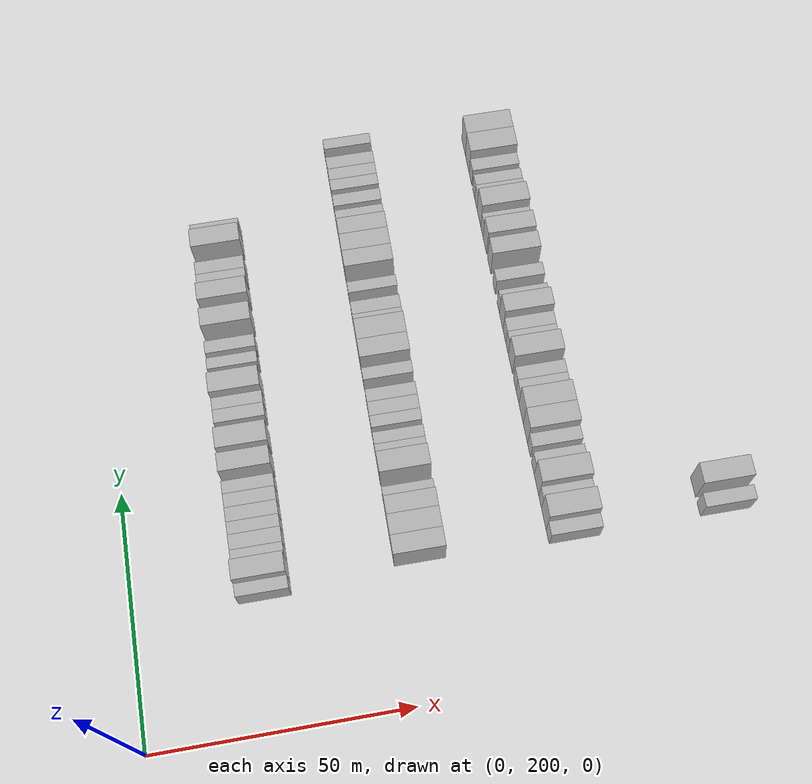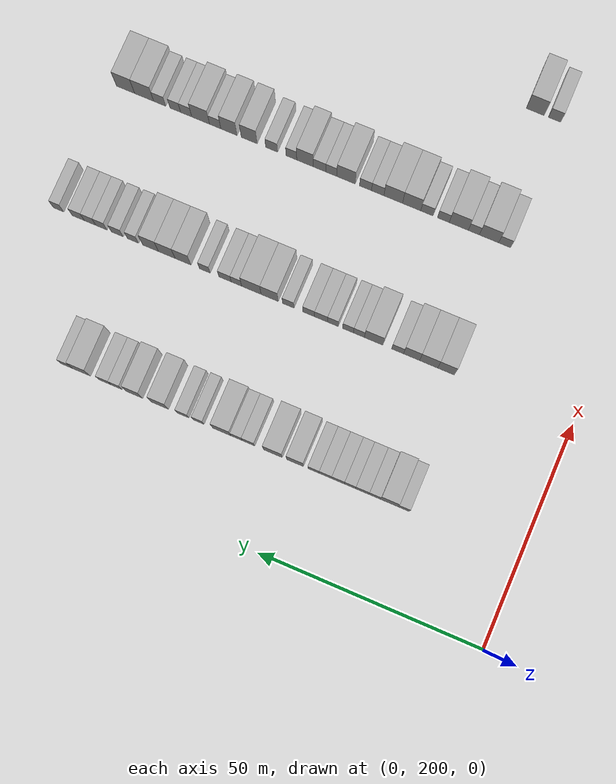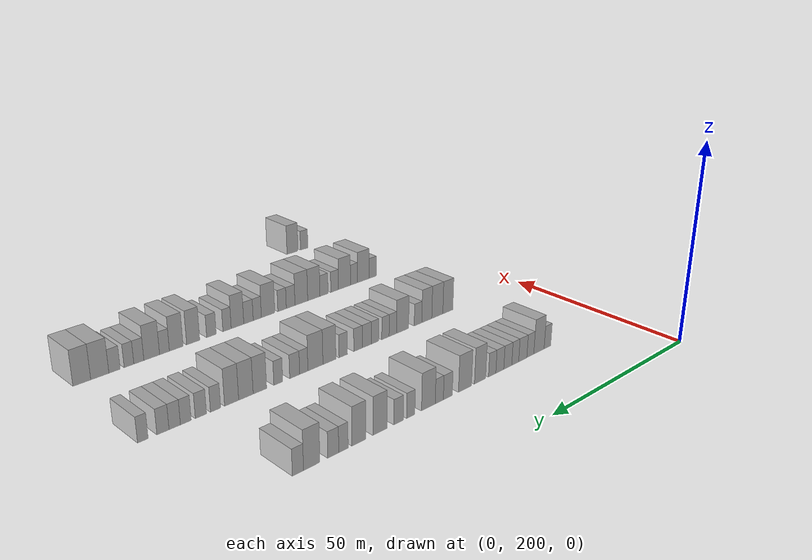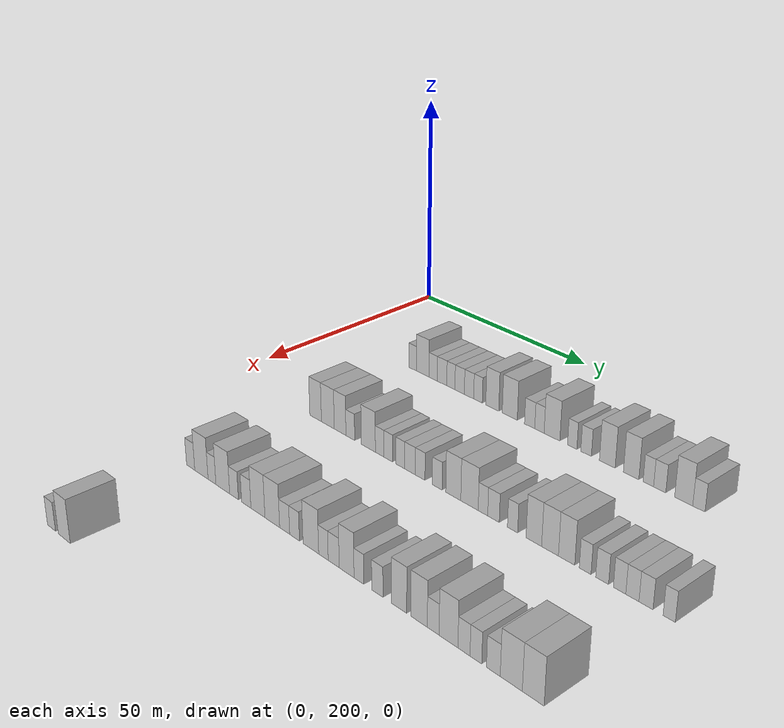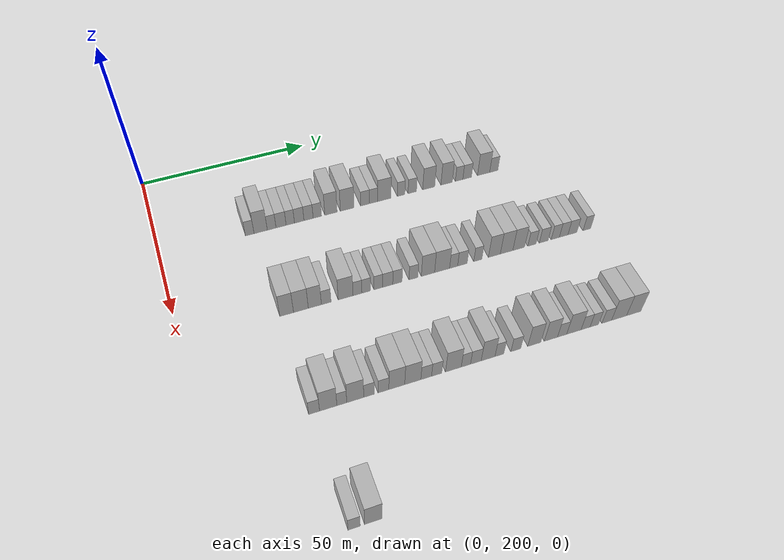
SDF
<sdf version="1.6">
 <world name="default">
  <model name="building_173">
   <static>1</static>
   <pose>25.0000 225.8826 0 0.000000 0.000000 0.000000</pose>
   <link name="link">
    <pose>0 0 3.00 0 0 0</pose>
    <collision name="collision"><geometry><box><size>10.0000 2.5485 6.0000</size></box></geometry></collision>
    <visual name="visual">
     <cast_shadows>0</cast_shadows>
     <geometry><box><size>10.0000 2.5485 6.0000</size></box></geometry>
     <material>
      <script>
       <uri>model://HANNAS_wall/materials/scripts</uri>
       <uri>model://HANNAS_wall/materials/textures</uri>
       <name>vrc/HANNAS_wall</name>
      </script>
     </material>
    </visual>
   </link>
  </model>
  <model name="building_174">
   <static>1</static>
   <pose>25.0000 229.1129 0 0.000000 0.000000 0.000000</pose>
   <link name="link">
    <pose>0 0 4.50 0 0 0</pose>
    <collision name="collision"><geometry><box><size>10.0000 3.9122 9.0000</size></box></geometry></collision>
    <visual name="visual">
     <cast_shadows>0</cast_shadows>
     <geometry><box><size>10.0000 3.9122 9.0000</size></box></geometry>
     <material>
      <script>
       <uri>model://HANNAS_wall/materials/scripts</uri>
       <uri>model://HANNAS_wall/materials/textures</uri>
       <name>vrc/HANNAS_wall</name>
      </script>
     </material>
    </visual>
   </link>
  </model>
  <model name="building_175">
   <static>1</static>
   <pose>25.0000 232.3630 0 0.000000 0.000000 0.000000</pose>
   <link name="link">
    <pose>0 0 3.00 0 0 0</pose>
    <collision name="collision"><geometry><box><size>10.0000 2.5878 6.0000</size></box></geometry></collision>
    <visual name="visual">
     <cast_shadows>0</cast_shadows>
     <geometry><box><size>10.0000 2.5878 6.0000</size></box></geometry>
     <material>
      <script>
       <uri>model://HANNAS_wall/materials/scripts</uri>
       <uri>model://HANNAS_wall/materials/textures</uri>
       <name>vrc/HANNAS_wall</name>
      </script>
     </material>
    </visual>
   </link>
  </model>
  <model name="building_176">
   <static>1</static>
   <pose>25.0000 235.1568 0 0.000000 0.000000 0.000000</pose>
   <link name="link">
    <pose>0 0 3.00 0 0 0</pose>
    <collision name="collision"><geometry><box><size>10.0000 2.9998 6.0000</size></box></geometry></collision>
    <visual name="visual">
     <cast_shadows>0</cast_shadows>
     <geometry><box><size>10.0000 2.9998 6.0000</size></box></geometry>
     <material>
      <script>
       <uri>model://HANNAS_wall/materials/scripts</uri>
       <uri>model://HANNAS_wall/materials/textures</uri>
       <name>vrc/HANNAS_wall</name>
      </script>
     </material>
    </visual>
   </link>
  </model>
  <model name="building_177">
   <static>1</static>
   <pose>25.0000 237.9057 0 0.000000 0.000000 0.000000</pose>
   <link name="link">
    <pose>0 0 3.00 0 0 0</pose>
    <collision name="collision"><geometry><box><size>10.0000 2.4981 6.0000</size></box></geometry></collision>
    <visual name="visual">
     <cast_shadows>0</cast_shadows>
     <geometry><box><size>10.0000 2.4981 6.0000</size></box></geometry>
     <material>
      <script>
       <uri>model://HANNAS_wall/materials/scripts</uri>
       <uri>model://HANNAS_wall/materials/textures</uri>
       <name>vrc/HANNAS_wall</name>
      </script>
     </material>
    </visual>
   </link>
  </model>
  <model name="building_178">
   <static>1</static>
   <pose>25.0000 240.5808 0 0.000000 0.000000 0.000000</pose>
   <link name="link">
    <pose>0 0 3.00 0 0 0</pose>
    <collision name="collision"><geometry><box><size>10.0000 2.8521 6.0000</size></box></geometry></collision>
    <visual name="visual">
     <cast_shadows>0</cast_shadows>
     <geometry><box><size>10.0000 2.8521 6.0000</size></box></geometry>
     <material>
      <script>
       <uri>model://HANNAS_wall/materials/scripts</uri>
       <uri>model://HANNAS_wall/materials/textures</uri>
       <name>vrc/HANNAS_wall</name>
      </script>
     </material>
    </visual>
   </link>
  </model>
  <model name="building_179">
   <static>1</static>
   <pose>25.0000 243.3950 0 0.000000 0.000000 0.000000</pose>
   <link name="link">
    <pose>0 0 3.00 0 0 0</pose>
    <collision name="collision"><geometry><box><size>10.0000 2.7762 6.0000</size></box></geometry></collision>
    <visual name="visual">
     <cast_shadows>0</cast_shadows>
     <geometry><box><size>10.0000 2.7762 6.0000</size></box></geometry>
     <material>
      <script>
       <uri>model://HANNAS_wall/materials/scripts</uri>
       <uri>model://HANNAS_wall/materials/textures</uri>
       <name>vrc/HANNAS_wall</name>
      </script>
     </material>
    </visual>
   </link>
  </model>
  <model name="building_180">
   <static>1</static>
   <pose>25.0000 246.0584 0 0.000000 0.000000 0.000000</pose>
   <link name="link">
    <pose>0 0 3.00 0 0 0</pose>
    <collision name="collision"><geometry><box><size>10.0000 2.5507 6.0000</size></box></geometry></collision>
    <visual name="visual">
     <cast_shadows>0</cast_shadows>
     <geometry><box><size>10.0000 2.5507 6.0000</size></box></geometry>
     <material>
      <script>
       <uri>model://HANNAS_wall/materials/scripts</uri>
       <uri>model://HANNAS_wall/materials/textures</uri>
       <name>vrc/HANNAS_wall</name>
      </script>
     </material>
    </visual>
   </link>
  </model>
  <model name="building_181">
   <static>1</static>
   <pose>25.0000 250.2073 0 0.000000 0.000000 0.000000</pose>
   <link name="link">
    <pose>0 0 4.50 0 0 0</pose>
    <collision name="collision"><geometry><box><size>10.0000 3.7470 9.0000</size></box></geometry></collision>
    <visual name="visual">
     <cast_shadows>0</cast_shadows>
     <geometry><box><size>10.0000 3.7470 9.0000</size></box></geometry>
     <material>
      <script>
       <uri>model://HANNAS_wall/materials/scripts</uri>
       <uri>model://HANNAS_wall/materials/textures</uri>
       <name>vrc/HANNAS_wall</name>
      </script>
     </material>
    </visual>
   </link>
  </model>
  <model name="building_182">
   <static>1</static>
   <pose>25.0000 255.2001 0 0.000000 0.000000 0.000000</pose>
   <link name="link">
    <pose>0 0 4.50 0 0 0</pose>
    <collision name="collision"><geometry><box><size>10.0000 4.2385 9.0000</size></box></geometry></collision>
    <visual name="visual">
     <cast_shadows>0</cast_shadows>
     <geometry><box><size>10.0000 4.2385 9.0000</size></box></geometry>
     <material>
      <script>
       <uri>model://HANNAS_wall/materials/scripts</uri>
       <uri>model://HANNAS_wall/materials/textures</uri>
       <name>vrc/HANNAS_wall</name>
      </script>
     </material>
    </visual>
   </link>
  </model>
  <model name="building_183">
   <static>1</static>
   <pose>25.0000 260.7213 0 0.000000 0.000000 0.000000</pose>
   <link name="link">
    <pose>0 0 3.00 0 0 0</pose>
    <collision name="collision"><geometry><box><size>10.0000 2.8040 6.0000</size></box></geometry></collision>
    <visual name="visual">
     <cast_shadows>0</cast_shadows>
     <geometry><box><size>10.0000 2.8040 6.0000</size></box></geometry>
     <material>
      <script>
       <uri>model://HANNAS_wall/materials/scripts</uri>
       <uri>model://HANNAS_wall/materials/textures</uri>
       <name>vrc/HANNAS_wall</name>
      </script>
     </material>
    </visual>
   </link>
  </model>
  <model name="building_184">
   <static>1</static>
   <pose>25.0000 263.3914 0 0.000000 0.000000 0.000000</pose>
   <link name="link">
    <pose>0 0 3.00 0 0 0</pose>
    <collision name="collision"><geometry><box><size>10.0000 2.5361 6.0000</size></box></geometry></collision>
    <visual name="visual">
     <cast_shadows>0</cast_shadows>
     <geometry><box><size>10.0000 2.5361 6.0000</size></box></geometry>
     <material>
      <script>
       <uri>model://HANNAS_wall/materials/scripts</uri>
       <uri>model://HANNAS_wall/materials/textures</uri>
       <name>vrc/HANNAS_wall</name>
      </script>
     </material>
    </visual>
   </link>
  </model>
  <model name="building_185">
   <static>1</static>
   <pose>25.0000 266.7529 0 0.000000 0.000000 0.000000</pose>
   <link name="link">
    <pose>0 0 4.50 0 0 0</pose>
    <collision name="collision"><geometry><box><size>10.0000 4.1869 9.0000</size></box></geometry></collision>
    <visual name="visual">
     <cast_shadows>0</cast_shadows>
     <geometry><box><size>10.0000 4.1869 9.0000</size></box></geometry>
     <material>
      <script>
       <uri>model://HANNAS_wall/materials/scripts</uri>
       <uri>model://HANNAS_wall/materials/textures</uri>
       <name>vrc/HANNAS_wall</name>
      </script>
     </material>
    </visual>
   </link>
  </model>
  <model name="building_186">
   <static>1</static>
   <pose>25.0000 272.0565 0 0.000000 0.000000 0.000000</pose>
   <link name="link">
    <pose>0 0 3.00 0 0 0</pose>
    <collision name="collision"><geometry><box><size>10.0000 2.4203 6.0000</size></box></geometry></collision>
    <visual name="visual">
     <cast_shadows>0</cast_shadows>
     <geometry><box><size>10.0000 2.4203 6.0000</size></box></geometry>
     <material>
      <script>
       <uri>model://HANNAS_wall/materials/scripts</uri>
       <uri>model://HANNAS_wall/materials/textures</uri>
       <name>vrc/HANNAS_wall</name>
      </script>
     </material>
    </visual>
   </link>
  </model>
  <model name="building_187">
   <static>1</static>
   <pose>25.0000 275.6158 0 0.000000 0.000000 0.000000</pose>
   <link name="link">
    <pose>0 0 3.00 0 0 0</pose>
    <collision name="collision"><geometry><box><size>10.0000 2.6983 6.0000</size></box></geometry></collision>
    <visual name="visual">
     <cast_shadows>0</cast_shadows>
     <geometry><box><size>10.0000 2.6983 6.0000</size></box></geometry>
     <material>
      <script>
       <uri>model://HANNAS_wall/materials/scripts</uri>
       <uri>model://HANNAS_wall/materials/textures</uri>
       <name>vrc/HANNAS_wall</name>
      </script>
     </material>
    </visual>
   </link>
  </model>
  <model name="building_188">
   <static>1</static>
   <pose>25.0000 280.9083 0 0.000000 0.000000 0.000000</pose>
   <link name="link">
    <pose>0 0 4.50 0 0 0</pose>
    <collision name="collision"><geometry><box><size>10.0000 3.8869 9.0000</size></box></geometry></collision>
    <visual name="visual">
     <cast_shadows>0</cast_shadows>
     <geometry><box><size>10.0000 3.8869 9.0000</size></box></geometry>
     <material>
      <script>
       <uri>model://HANNAS_wall/materials/scripts</uri>
       <uri>model://HANNAS_wall/materials/textures</uri>
       <name>vrc/HANNAS_wall</name>
      </script>
     </material>
    </visual>
   </link>
  </model>
  <model name="building_189">
   <static>1</static>
   <pose>25.0000 286.7028 0 0.000000 0.000000 0.000000</pose>
   <link name="link">
    <pose>0 0 4.50 0 0 0</pose>
    <collision name="collision"><geometry><box><size>10.0000 3.7021 9.0000</size></box></geometry></collision>
    <visual name="visual">
     <cast_shadows>0</cast_shadows>
     <geometry><box><size>10.0000 3.7021 9.0000</size></box></geometry>
     <material>
      <script>
       <uri>model://HANNAS_wall/materials/scripts</uri>
       <uri>model://HANNAS_wall/materials/textures</uri>
       <name>vrc/HANNAS_wall</name>
      </script>
     </material>
    </visual>
   </link>
  </model>
  <model name="building_190">
   <static>1</static>
   <pose>25.0000 290.7845 0 0.000000 0.000000 0.000000</pose>
   <link name="link">
    <pose>0 0 3.00 0 0 0</pose>
    <collision name="collision"><geometry><box><size>10.0000 2.4613 6.0000</size></box></geometry></collision>
    <visual name="visual">
     <cast_shadows>0</cast_shadows>
     <geometry><box><size>10.0000 2.4613 6.0000</size></box></geometry>
     <material>
      <script>
       <uri>model://HANNAS_wall/materials/scripts</uri>
       <uri>model://HANNAS_wall/materials/textures</uri>
       <name>vrc/HANNAS_wall</name>
      </script>
     </material>
    </visual>
   </link>
  </model>
  <model name="building_191">
   <static>1</static>
   <pose>25.0000 293.4277 0 0.000000 0.000000 0.000000</pose>
   <link name="link">
    <pose>0 0 3.00 0 0 0</pose>
    <collision name="collision"><geometry><box><size>10.0000 2.8249 6.0000</size></box></geometry></collision>
    <visual name="visual">
     <cast_shadows>0</cast_shadows>
     <geometry><box><size>10.0000 2.8249 6.0000</size></box></geometry>
     <material>
      <script>
       <uri>model://HANNAS_wall/materials/scripts</uri>
       <uri>model://HANNAS_wall/materials/textures</uri>
       <name>vrc/HANNAS_wall</name>
      </script>
     </material>
    </visual>
   </link>
  </model>
  <model name="building_192">
   <static>1</static>
   <pose>25.0000 298.8674 0 0.000000 0.000000 0.000000</pose>
   <link name="link">
    <pose>0 0 4.50 0 0 0</pose>
    <collision name="collision"><geometry><box><size>10.0000 4.0545 9.0000</size></box></geometry></collision>
    <visual name="visual">
     <cast_shadows>0</cast_shadows>
     <geometry><box><size>10.0000 4.0545 9.0000</size></box></geometry>
     <material>
      <script>
       <uri>model://HANNAS_wall/materials/scripts</uri>
       <uri>model://HANNAS_wall/materials/textures</uri>
       <name>vrc/HANNAS_wall</name>
      </script>
     </material>
    </visual>
   </link>
  </model>
  <model name="building_193">
   <static>1</static>
   <pose>25.0000 302.2508 0 0.000000 0.000000 0.000000</pose>
   <link name="link">
    <pose>0 0 3.00 0 0 0</pose>
    <collision name="collision"><geometry><box><size>10.0000 2.7124 6.0000</size></box></geometry></collision>
    <visual name="visual">
     <cast_shadows>0</cast_shadows>
     <geometry><box><size>10.0000 2.7124 6.0000</size></box></geometry>
     <material>
      <script>
       <uri>model://HANNAS_wall/materials/scripts</uri>
       <uri>model://HANNAS_wall/materials/textures</uri>
       <name>vrc/HANNAS_wall</name>
      </script>
     </material>
    </visual>
   </link>
  </model>
  <model name="building_398">
   <static>1</static>
   <pose>55.0000 228.6213 0 0.000000 0.000000 0.000000</pose>
   <link name="link">
    <pose>0 0 4.50 0 0 0</pose>
    <collision name="collision"><geometry><box><size>10.0000 3.7735 9.0000</size></box></geometry></collision>
    <visual name="visual">
     <cast_shadows>0</cast_shadows>
     <geometry><box><size>10.0000 3.7735 9.0000</size></box></geometry>
     <material>
      <script>
       <uri>model://HANNAS_wall/materials/scripts</uri>
       <uri>model://HANNAS_wall/materials/textures</uri>
       <name>vrc/HANNAS_wall</name>
      </script>
     </material>
    </visual>
   </link>
  </model>
  <model name="building_399">
   <static>1</static>
   <pose>55.0000 232.5539 0 0.000000 0.000000 0.000000</pose>
   <link name="link">
    <pose>0 0 4.50 0 0 0</pose>
    <collision name="collision"><geometry><box><size>10.0000 4.0917 9.0000</size></box></geometry></collision>
    <visual name="visual">
     <cast_shadows>0</cast_shadows>
     <geometry><box><size>10.0000 4.0917 9.0000</size></box></geometry>
     <material>
      <script>
       <uri>model://HANNAS_wall/materials/scripts</uri>
       <uri>model://HANNAS_wall/materials/textures</uri>
       <name>vrc/HANNAS_wall</name>
      </script>
     </material>
    </visual>
   </link>
  </model>
  <model name="building_400">
   <static>1</static>
   <pose>55.0000 236.4184 0 0.000000 0.000000 0.000000</pose>
   <link name="link">
    <pose>0 0 4.50 0 0 0</pose>
    <collision name="collision"><geometry><box><size>10.0000 3.6374 9.0000</size></box></geometry></collision>
    <visual name="visual">
     <cast_shadows>0</cast_shadows>
     <geometry><box><size>10.0000 3.6374 9.0000</size></box></geometry>
     <material>
      <script>
       <uri>model://HANNAS_wall/materials/scripts</uri>
       <uri>model://HANNAS_wall/materials/textures</uri>
       <name>vrc/HANNAS_wall</name>
      </script>
     </material>
    </visual>
   </link>
  </model>
  <model name="building_401">
   <static>1</static>
   <pose>55.0000 239.5877 0 0.000000 0.000000 0.000000</pose>
   <link name="link">
    <pose>0 0 3.00 0 0 0</pose>
    <collision name="collision"><geometry><box><size>10.0000 2.7013 6.0000</size></box></geometry></collision>
    <visual name="visual">
     <cast_shadows>0</cast_shadows>
     <geometry><box><size>10.0000 2.7013 6.0000</size></box></geometry>
     <material>
      <script>
       <uri>model://HANNAS_wall/materials/scripts</uri>
       <uri>model://HANNAS_wall/materials/textures</uri>
       <name>vrc/HANNAS_wall</name>
      </script>
     </material>
    </visual>
   </link>
  </model>
  <model name="building_402">
   <static>1</static>
   <pose>55.0000 245.0424 0 0.000000 0.000000 0.000000</pose>
   <link name="link">
    <pose>0 0 4.50 0 0 0</pose>
    <collision name="collision"><geometry><box><size>10.0000 4.2081 9.0000</size></box></geometry></collision>
    <visual name="visual">
     <cast_shadows>0</cast_shadows>
     <geometry><box><size>10.0000 4.2081 9.0000</size></box></geometry>
     <material>
      <script>
       <uri>model://HANNAS_wall/materials/scripts</uri>
       <uri>model://HANNAS_wall/materials/textures</uri>
       <name>vrc/HANNAS_wall</name>
      </script>
     </material>
    </visual>
   </link>
  </model>
  <model name="building_403">
   <static>1</static>
   <pose>55.0000 248.4067 0 0.000000 0.000000 0.000000</pose>
   <link name="link">
    <pose>0 0 3.00 0 0 0</pose>
    <collision name="collision"><geometry><box><size>10.0000 2.5204 6.0000</size></box></geometry></collision>
    <visual name="visual">
     <cast_shadows>0</cast_shadows>
     <geometry><box><size>10.0000 2.5204 6.0000</size></box></geometry>
     <material>
      <script>
       <uri>model://HANNAS_wall/materials/scripts</uri>
       <uri>model://HANNAS_wall/materials/textures</uri>
       <name>vrc/HANNAS_wall</name>
      </script>
     </material>
    </visual>
   </link>
  </model>
  <model name="building_404">
   <static>1</static>
   <pose>55.0000 250.8992 0 0.000000 0.000000 0.000000</pose>
   <link name="link">
    <pose>0 0 3.00 0 0 0</pose>
    <collision name="collision"><geometry><box><size>10.0000 2.4646 6.0000</size></box></geometry></collision>
    <visual name="visual">
     <cast_shadows>0</cast_shadows>
     <geometry><box><size>10.0000 2.4646 6.0000</size></box></geometry>
     <material>
      <script>
       <uri>model://HANNAS_wall/materials/scripts</uri>
       <uri>model://HANNAS_wall/materials/textures</uri>
       <name>vrc/HANNAS_wall</name>
      </script>
     </material>
    </visual>
   </link>
  </model>
  <model name="building_405">
   <static>1</static>
   <pose>55.0000 254.3653 0 0.000000 0.000000 0.000000</pose>
   <link name="link">
    <pose>0 0 3.00 0 0 0</pose>
    <collision name="collision"><geometry><box><size>10.0000 2.4677 6.0000</size></box></geometry></collision>
    <visual name="visual">
     <cast_shadows>0</cast_shadows>
     <geometry><box><size>10.0000 2.4677 6.0000</size></box></geometry>
     <material>
      <script>
       <uri>model://HANNAS_wall/materials/scripts</uri>
       <uri>model://HANNAS_wall/materials/textures</uri>
       <name>vrc/HANNAS_wall</name>
      </script>
     </material>
    </visual>
   </link>
  </model>
  <model name="building_406">
   <static>1</static>
   <pose>55.0000 257.0747 0 0.000000 0.000000 0.000000</pose>
   <link name="link">
    <pose>0 0 3.00 0 0 0</pose>
    <collision name="collision"><geometry><box><size>10.0000 2.9512 6.0000</size></box></geometry></collision>
    <visual name="visual">
     <cast_shadows>0</cast_shadows>
     <geometry><box><size>10.0000 2.9512 6.0000</size></box></geometry>
     <material>
      <script>
       <uri>model://HANNAS_wall/materials/scripts</uri>
       <uri>model://HANNAS_wall/materials/textures</uri>
       <name>vrc/HANNAS_wall</name>
      </script>
     </material>
    </visual>
   </link>
  </model>
  <model name="building_407">
   <static>1</static>
   <pose>55.0000 259.9059 0 0.000000 0.000000 0.000000</pose>
   <link name="link">
    <pose>0 0 3.00 0 0 0</pose>
    <collision name="collision"><geometry><box><size>10.0000 2.7111 6.0000</size></box></geometry></collision>
    <visual name="visual">
     <cast_shadows>0</cast_shadows>
     <geometry><box><size>10.0000 2.7111 6.0000</size></box></geometry>
     <material>
      <script>
       <uri>model://HANNAS_wall/materials/scripts</uri>
       <uri>model://HANNAS_wall/materials/textures</uri>
       <name>vrc/HANNAS_wall</name>
      </script>
     </material>
    </visual>
   </link>
  </model>
  <model name="building_408">
   <static>1</static>
   <pose>55.0000 264.5749 0 0.000000 0.000000 0.000000</pose>
   <link name="link">
    <pose>0 0 3.00 0 0 0</pose>
    <collision name="collision"><geometry><box><size>10.0000 2.6269 6.0000</size></box></geometry></collision>
    <visual name="visual">
     <cast_shadows>0</cast_shadows>
     <geometry><box><size>10.0000 2.6269 6.0000</size></box></geometry>
     <material>
      <script>
       <uri>model://HANNAS_wall/materials/scripts</uri>
       <uri>model://HANNAS_wall/materials/textures</uri>
       <name>vrc/HANNAS_wall</name>
      </script>
     </material>
    </visual>
   </link>
  </model>
  <model name="building_409">
   <static>1</static>
   <pose>55.0000 268.8591 0 0.000000 0.000000 0.000000</pose>
   <link name="link">
    <pose>0 0 4.50 0 0 0</pose>
    <collision name="collision"><geometry><box><size>10.0000 3.9415 9.0000</size></box></geometry></collision>
    <visual name="visual">
     <cast_shadows>0</cast_shadows>
     <geometry><box><size>10.0000 3.9415 9.0000</size></box></geometry>
     <material>
      <script>
       <uri>model://HANNAS_wall/materials/scripts</uri>
       <uri>model://HANNAS_wall/materials/textures</uri>
       <name>vrc/HANNAS_wall</name>
      </script>
     </material>
    </visual>
   </link>
  </model>
  <model name="building_410">
   <static>1</static>
   <pose>55.0000 273.0668 0 0.000000 0.000000 0.000000</pose>
   <link name="link">
    <pose>0 0 4.50 0 0 0</pose>
    <collision name="collision"><geometry><box><size>10.0000 4.4739 9.0000</size></box></geometry></collision>
    <visual name="visual">
     <cast_shadows>0</cast_shadows>
     <geometry><box><size>10.0000 4.4739 9.0000</size></box></geometry>
     <material>
      <script>
       <uri>model://HANNAS_wall/materials/scripts</uri>
       <uri>model://HANNAS_wall/materials/textures</uri>
       <name>vrc/HANNAS_wall</name>
      </script>
     </material>
    </visual>
   </link>
  </model>
  <model name="building_411">
   <static>1</static>
   <pose>55.0000 276.5057 0 0.000000 0.000000 0.000000</pose>
   <link name="link">
    <pose>0 0 3.00 0 0 0</pose>
    <collision name="collision"><geometry><box><size>10.0000 2.4039 6.0000</size></box></geometry></collision>
    <visual name="visual">
     <cast_shadows>0</cast_shadows>
     <geometry><box><size>10.0000 2.4039 6.0000</size></box></geometry>
     <material>
      <script>
       <uri>model://HANNAS_wall/materials/scripts</uri>
       <uri>model://HANNAS_wall/materials/textures</uri>
       <name>vrc/HANNAS_wall</name>
      </script>
     </material>
    </visual>
   </link>
  </model>
  <model name="building_412">
   <static>1</static>
   <pose>55.0000 279.1409 0 0.000000 0.000000 0.000000</pose>
   <link name="link">
    <pose>0 0 3.00 0 0 0</pose>
    <collision name="collision"><geometry><box><size>10.0000 2.8666 6.0000</size></box></geometry></collision>
    <visual name="visual">
     <cast_shadows>0</cast_shadows>
     <geometry><box><size>10.0000 2.8666 6.0000</size></box></geometry>
     <material>
      <script>
       <uri>model://HANNAS_wall/materials/scripts</uri>
       <uri>model://HANNAS_wall/materials/textures</uri>
       <name>vrc/HANNAS_wall</name>
      </script>
     </material>
    </visual>
   </link>
  </model>
  <model name="building_413">
   <static>1</static>
   <pose>55.0000 283.8121 0 0.000000 0.000000 0.000000</pose>
   <link name="link">
    <pose>0 0 3.00 0 0 0</pose>
    <collision name="collision"><geometry><box><size>10.0000 2.4757 6.0000</size></box></geometry></collision>
    <visual name="visual">
     <cast_shadows>0</cast_shadows>
     <geometry><box><size>10.0000 2.4757 6.0000</size></box></geometry>
     <material>
      <script>
       <uri>model://HANNAS_wall/materials/scripts</uri>
       <uri>model://HANNAS_wall/materials/textures</uri>
       <name>vrc/HANNAS_wall</name>
      </script>
     </material>
    </visual>
   </link>
  </model>
  <model name="building_414">
   <static>1</static>
   <pose>55.0000 288.8785 0 0.000000 0.000000 0.000000</pose>
   <link name="link">
    <pose>0 0 4.50 0 0 0</pose>
    <collision name="collision"><geometry><box><size>10.0000 3.6571 9.0000</size></box></geometry></collision>
    <visual name="visual">
     <cast_shadows>0</cast_shadows>
     <geometry><box><size>10.0000 3.6571 9.0000</size></box></geometry>
     <material>
      <script>
       <uri>model://HANNAS_wall/materials/scripts</uri>
       <uri>model://HANNAS_wall/materials/textures</uri>
       <name>vrc/HANNAS_wall</name>
      </script>
     </material>
    </visual>
   </link>
  </model>
  <model name="building_415">
   <static>1</static>
   <pose>55.0000 292.6351 0 0.000000 0.000000 0.000000</pose>
   <link name="link">
    <pose>0 0 4.50 0 0 0</pose>
    <collision name="collision"><geometry><box><size>10.0000 3.8561 9.0000</size></box></geometry></collision>
    <visual name="visual">
     <cast_shadows>0</cast_shadows>
     <geometry><box><size>10.0000 3.8561 9.0000</size></box></geometry>
     <material>
      <script>
       <uri>model://HANNAS_wall/materials/scripts</uri>
       <uri>model://HANNAS_wall/materials/textures</uri>
       <name>vrc/HANNAS_wall</name>
      </script>
     </material>
    </visual>
   </link>
  </model>
  <model name="building_416">
   <static>1</static>
   <pose>55.0000 296.3986 0 0.000000 0.000000 0.000000</pose>
   <link name="link">
    <pose>0 0 4.50 0 0 0</pose>
    <collision name="collision"><geometry><box><size>10.0000 3.6708 9.0000</size></box></geometry></collision>
    <visual name="visual">
     <cast_shadows>0</cast_shadows>
     <geometry><box><size>10.0000 3.6708 9.0000</size></box></geometry>
     <material>
      <script>
       <uri>model://HANNAS_wall/materials/scripts</uri>
       <uri>model://HANNAS_wall/materials/textures</uri>
       <name>vrc/HANNAS_wall</name>
      </script>
     </material>
    </visual>
   </link>
  </model>
  <model name="building_417">
   <static>1</static>
   <pose>55.0000 300.5239 0 0.000000 0.000000 0.000000</pose>
   <link name="link">
    <pose>0 0 3.00 0 0 0</pose>
    <collision name="collision"><geometry><box><size>10.0000 2.5799 6.0000</size></box></geometry></collision>
    <visual name="visual">
     <cast_shadows>0</cast_shadows>
     <geometry><box><size>10.0000 2.5799 6.0000</size></box></geometry>
     <material>
      <script>
       <uri>model://HANNAS_wall/materials/scripts</uri>
       <uri>model://HANNAS_wall/materials/textures</uri>
       <name>vrc/HANNAS_wall</name>
      </script>
     </material>
    </visual>
   </link>
  </model>
  <model name="building_418">
   <static>1</static>
   <pose>55.0000 304.2019 0 0.000000 0.000000 0.000000</pose>
   <link name="link">
    <pose>0 0 3.00 0 0 0</pose>
    <collision name="collision"><geometry><box><size>10.0000 2.7761 6.0000</size></box></geometry></collision>
    <visual name="visual">
     <cast_shadows>0</cast_shadows>
     <geometry><box><size>10.0000 2.7761 6.0000</size></box></geometry>
     <material>
      <script>
       <uri>model://HANNAS_wall/materials/scripts</uri>
       <uri>model://HANNAS_wall/materials/textures</uri>
       <name>vrc/HANNAS_wall</name>
      </script>
     </material>
    </visual>
   </link>
  </model>
  <model name="building_419">
   <static>1</static>
   <pose>55.0000 307.8934 0 0.000000 0.000000 0.000000</pose>
   <link name="link">
    <pose>0 0 3.00 0 0 0</pose>
    <collision name="collision"><geometry><box><size>10.0000 2.6067 6.0000</size></box></geometry></collision>
    <visual name="visual">
     <cast_shadows>0</cast_shadows>
     <geometry><box><size>10.0000 2.6067 6.0000</size></box></geometry>
     <material>
      <script>
       <uri>model://HANNAS_wall/materials/scripts</uri>
       <uri>model://HANNAS_wall/materials/textures</uri>
       <name>vrc/HANNAS_wall</name>
      </script>
     </material>
    </visual>
   </link>
  </model>
  <model name="building_420">
   <static>1</static>
   <pose>55.0000 310.5528 0 0.000000 0.000000 0.000000</pose>
   <link name="link">
    <pose>0 0 3.00 0 0 0</pose>
    <collision name="collision"><geometry><box><size>10.0000 2.7122 6.0000</size></box></geometry></collision>
    <visual name="visual">
     <cast_shadows>0</cast_shadows>
     <geometry><box><size>10.0000 2.7122 6.0000</size></box></geometry>
     <material>
      <script>
       <uri>model://HANNAS_wall/materials/scripts</uri>
       <uri>model://HANNAS_wall/materials/textures</uri>
       <name>vrc/HANNAS_wall</name>
      </script>
     </material>
    </visual>
   </link>
  </model>
  <model name="building_421">
   <static>1</static>
   <pose>55.0000 313.3307 0 0.000000 0.000000 0.000000</pose>
   <link name="link">
    <pose>0 0 3.00 0 0 0</pose>
    <collision name="collision"><geometry><box><size>10.0000 2.8436 6.0000</size></box></geometry></collision>
    <visual name="visual">
     <cast_shadows>0</cast_shadows>
     <geometry><box><size>10.0000 2.8436 6.0000</size></box></geometry>
     <material>
      <script>
       <uri>model://HANNAS_wall/materials/scripts</uri>
       <uri>model://HANNAS_wall/materials/textures</uri>
       <name>vrc/HANNAS_wall</name>
      </script>
     </material>
    </visual>
   </link>
  </model>
  <model name="building_422">
   <static>1</static>
   <pose>55.0000 317.9645 0 0.000000 0.000000 0.000000</pose>
   <link name="link">
    <pose>0 0 3.00 0 0 0</pose>
    <collision name="collision"><geometry><box><size>10.0000 2.4240 6.0000</size></box></geometry></collision>
    <visual name="visual">
     <cast_shadows>0</cast_shadows>
     <geometry><box><size>10.0000 2.4240 6.0000</size></box></geometry>
     <material>
      <script>
       <uri>model://HANNAS_wall/materials/scripts</uri>
       <uri>model://HANNAS_wall/materials/textures</uri>
       <name>vrc/HANNAS_wall</name>
      </script>
     </material>
    </visual>
   </link>
  </model>
  <model name="building_636">
   <static>1</static>
   <pose>85.0000 227.3397 0 0.000000 0.000000 0.000000</pose>
   <link name="link">
    <pose>0 0 3.00 0 0 0</pose>
    <collision name="collision"><geometry><box><size>10.0000 2.7687 6.0000</size></box></geometry></collision>
    <visual name="visual">
     <cast_shadows>0</cast_shadows>
     <geometry><box><size>10.0000 2.7687 6.0000</size></box></geometry>
     <material>
      <script>
       <uri>model://HANNAS_wall/materials/scripts</uri>
       <uri>model://HANNAS_wall/materials/textures</uri>
       <name>vrc/HANNAS_wall</name>
      </script>
     </material>
    </visual>
   </link>
  </model>
  <model name="building_637">
   <static>1</static>
   <pose>85.0000 230.9272 0 0.000000 0.000000 0.000000</pose>
   <link name="link">
    <pose>0 0 4.50 0 0 0</pose>
    <collision name="collision"><geometry><box><size>10.0000 4.4063 9.0000</size></box></geometry></collision>
    <visual name="visual">
     <cast_shadows>0</cast_shadows>
     <geometry><box><size>10.0000 4.4063 9.0000</size></box></geometry>
     <material>
      <script>
       <uri>model://HANNAS_wall/materials/scripts</uri>
       <uri>model://HANNAS_wall/materials/textures</uri>
       <name>vrc/HANNAS_wall</name>
      </script>
     </material>
    </visual>
   </link>
  </model>
  <model name="building_638">
   <static>1</static>
   <pose>85.0000 234.4052 0 0.000000 0.000000 0.000000</pose>
   <link name="link">
    <pose>0 0 3.00 0 0 0</pose>
    <collision name="collision"><geometry><box><size>10.0000 2.5496 6.0000</size></box></geometry></collision>
    <visual name="visual">
     <cast_shadows>0</cast_shadows>
     <geometry><box><size>10.0000 2.5496 6.0000</size></box></geometry>
     <material>
      <script>
       <uri>model://HANNAS_wall/materials/scripts</uri>
       <uri>model://HANNAS_wall/materials/textures</uri>
       <name>vrc/HANNAS_wall</name>
      </script>
     </material>
    </visual>
   </link>
  </model>
  <model name="building_639">
   <static>1</static>
   <pose>85.0000 237.8753 0 0.000000 0.000000 0.000000</pose>
   <link name="link">
    <pose>0 0 4.50 0 0 0</pose>
    <collision name="collision"><geometry><box><size>10.0000 4.3905 9.0000</size></box></geometry></collision>
    <visual name="visual">
     <cast_shadows>0</cast_shadows>
     <geometry><box><size>10.0000 4.3905 9.0000</size></box></geometry>
     <material>
      <script>
       <uri>model://HANNAS_wall/materials/scripts</uri>
       <uri>model://HANNAS_wall/materials/textures</uri>
       <name>vrc/HANNAS_wall</name>
      </script>
     </material>
    </visual>
   </link>
  </model>
  <model name="building_640">
   <static>1</static>
   <pose>85.0000 241.4347 0 0.000000 0.000000 0.000000</pose>
   <link name="link">
    <pose>0 0 3.00 0 0 0</pose>
    <collision name="collision"><geometry><box><size>10.0000 2.7282 6.0000</size></box></geometry></collision>
    <visual name="visual">
     <cast_shadows>0</cast_shadows>
     <geometry><box><size>10.0000 2.7282 6.0000</size></box></geometry>
     <material>
      <script>
       <uri>model://HANNAS_wall/materials/scripts</uri>
       <uri>model://HANNAS_wall/materials/textures</uri>
       <name>vrc/HANNAS_wall</name>
      </script>
     </material>
    </visual>
   </link>
  </model>
  <model name="building_641">
   <static>1</static>
   <pose>85.0000 245.2190 0 0.000000 0.000000 0.000000</pose>
   <link name="link">
    <pose>0 0 3.00 0 0 0</pose>
    <collision name="collision"><geometry><box><size>10.0000 2.8404 6.0000</size></box></geometry></collision>
    <visual name="visual">
     <cast_shadows>0</cast_shadows>
     <geometry><box><size>10.0000 2.8404 6.0000</size></box></geometry>
     <material>
      <script>
       <uri>model://HANNAS_wall/materials/scripts</uri>
       <uri>model://HANNAS_wall/materials/textures</uri>
       <name>vrc/HANNAS_wall</name>
      </script>
     </material>
    </visual>
   </link>
  </model>
  <model name="building_642">
   <static>1</static>
   <pose>85.0000 248.7476 0 0.000000 0.000000 0.000000</pose>
   <link name="link">
    <pose>0 0 4.50 0 0 0</pose>
    <collision name="collision"><geometry><box><size>10.0000 4.2168 9.0000</size></box></geometry></collision>
    <visual name="visual">
     <cast_shadows>0</cast_shadows>
     <geometry><box><size>10.0000 4.2168 9.0000</size></box></geometry>
     <material>
      <script>
       <uri>model://HANNAS_wall/materials/scripts</uri>
       <uri>model://HANNAS_wall/materials/textures</uri>
       <name>vrc/HANNAS_wall</name>
      </script>
     </material>
    </visual>
   </link>
  </model>
  <model name="building_643">
   <static>1</static>
   <pose>85.0000 253.0110 0 0.000000 0.000000 0.000000</pose>
   <link name="link">
    <pose>0 0 4.50 0 0 0</pose>
    <collision name="collision"><geometry><box><size>10.0000 4.3100 9.0000</size></box></geometry></collision>
    <visual name="visual">
     <cast_shadows>0</cast_shadows>
     <geometry><box><size>10.0000 4.3100 9.0000</size></box></geometry>
     <material>
      <script>
       <uri>model://HANNAS_wall/materials/scripts</uri>
       <uri>model://HANNAS_wall/materials/textures</uri>
       <name>vrc/HANNAS_wall</name>
      </script>
     </material>
    </visual>
   </link>
  </model>
  <model name="building_644">
   <static>1</static>
   <pose>85.0000 256.6072 0 0.000000 0.000000 0.000000</pose>
   <link name="link">
    <pose>0 0 3.00 0 0 0</pose>
    <collision name="collision"><geometry><box><size>10.0000 2.8824 6.0000</size></box></geometry></collision>
    <visual name="visual">
     <cast_shadows>0</cast_shadows>
     <geometry><box><size>10.0000 2.8824 6.0000</size></box></geometry>
     <material>
      <script>
       <uri>model://HANNAS_wall/materials/scripts</uri>
       <uri>model://HANNAS_wall/materials/textures</uri>
       <name>vrc/HANNAS_wall</name>
      </script>
     </material>
    </visual>
   </link>
  </model>
  <model name="building_645">
   <static>1</static>
   <pose>85.0000 259.4329 0 0.000000 0.000000 0.000000</pose>
   <link name="link">
    <pose>0 0 3.00 0 0 0</pose>
    <collision name="collision"><geometry><box><size>10.0000 2.7691 6.0000</size></box></geometry></collision>
    <visual name="visual">
     <cast_shadows>0</cast_shadows>
     <geometry><box><size>10.0000 2.7691 6.0000</size></box></geometry>
     <material>
      <script>
       <uri>model://HANNAS_wall/materials/scripts</uri>
       <uri>model://HANNAS_wall/materials/textures</uri>
       <name>vrc/HANNAS_wall</name>
      </script>
     </material>
    </visual>
   </link>
  </model>
  <model name="building_646">
   <static>1</static>
   <pose>85.0000 263.9637 0 0.000000 0.000000 0.000000</pose>
   <link name="link">
    <pose>0 0 4.50 0 0 0</pose>
    <collision name="collision"><geometry><box><size>10.0000 4.2924 9.0000</size></box></geometry></collision>
    <visual name="visual">
     <cast_shadows>0</cast_shadows>
     <geometry><box><size>10.0000 4.2924 9.0000</size></box></geometry>
     <material>
      <script>
       <uri>model://HANNAS_wall/materials/scripts</uri>
       <uri>model://HANNAS_wall/materials/textures</uri>
       <name>vrc/HANNAS_wall</name>
      </script>
     </material>
    </visual>
   </link>
  </model>
  <model name="building_647">
   <static>1</static>
   <pose>85.0000 267.3913 0 0.000000 0.000000 0.000000</pose>
   <link name="link">
    <pose>0 0 3.00 0 0 0</pose>
    <collision name="collision"><geometry><box><size>10.0000 2.5627 6.0000</size></box></geometry></collision>
    <visual name="visual">
     <cast_shadows>0</cast_shadows>
     <geometry><box><size>10.0000 2.5627 6.0000</size></box></geometry>
     <material>
      <script>
       <uri>model://HANNAS_wall/materials/scripts</uri>
       <uri>model://HANNAS_wall/materials/textures</uri>
       <name>vrc/HANNAS_wall</name>
      </script>
     </material>
    </visual>
   </link>
  </model>
  <model name="building_648">
   <static>1</static>
   <pose>85.0000 270.1379 0 0.000000 0.000000 0.000000</pose>
   <link name="link">
    <pose>0 0 3.00 0 0 0</pose>
    <collision name="collision"><geometry><box><size>10.0000 2.9306 6.0000</size></box></geometry></collision>
    <visual name="visual">
     <cast_shadows>0</cast_shadows>
     <geometry><box><size>10.0000 2.9306 6.0000</size></box></geometry>
     <material>
      <script>
       <uri>model://HANNAS_wall/materials/scripts</uri>
       <uri>model://HANNAS_wall/materials/textures</uri>
       <name>vrc/HANNAS_wall</name>
      </script>
     </material>
    </visual>
   </link>
  </model>
  <model name="building_649">
   <static>1</static>
   <pose>85.0000 273.5229 0 0.000000 0.000000 0.000000</pose>
   <link name="link">
    <pose>0 0 4.50 0 0 0</pose>
    <collision name="collision"><geometry><box><size>10.0000 3.8393 9.0000</size></box></geometry></collision>
    <visual name="visual">
     <cast_shadows>0</cast_shadows>
     <geometry><box><size>10.0000 3.8393 9.0000</size></box></geometry>
     <material>
      <script>
       <uri>model://HANNAS_wall/materials/scripts</uri>
       <uri>model://HANNAS_wall/materials/textures</uri>
       <name>vrc/HANNAS_wall</name>
      </script>
     </material>
    </visual>
   </link>
  </model>
  <model name="building_650">
   <static>1</static>
   <pose>85.0000 276.6832 0 0.000000 0.000000 0.000000</pose>
   <link name="link">
    <pose>0 0 3.00 0 0 0</pose>
    <collision name="collision"><geometry><box><size>10.0000 2.4812 6.0000</size></box></geometry></collision>
    <visual name="visual">
     <cast_shadows>0</cast_shadows>
     <geometry><box><size>10.0000 2.4812 6.0000</size></box></geometry>
     <material>
      <script>
       <uri>model://HANNAS_wall/materials/scripts</uri>
       <uri>model://HANNAS_wall/materials/textures</uri>
       <name>vrc/HANNAS_wall</name>
      </script>
     </material>
    </visual>
   </link>
  </model>
  <model name="building_651">
   <static>1</static>
   <pose>85.0000 281.3155 0 0.000000 0.000000 0.000000</pose>
   <link name="link">
    <pose>0 0 3.00 0 0 0</pose>
    <collision name="collision"><geometry><box><size>10.0000 2.7835 6.0000</size></box></geometry></collision>
    <visual name="visual">
     <cast_shadows>0</cast_shadows>
     <geometry><box><size>10.0000 2.7835 6.0000</size></box></geometry>
     <material>
      <script>
       <uri>model://HANNAS_wall/materials/scripts</uri>
       <uri>model://HANNAS_wall/materials/textures</uri>
       <name>vrc/HANNAS_wall</name>
      </script>
     </material>
    </visual>
   </link>
  </model>
  <model name="building_652">
   <static>1</static>
   <pose>85.0000 286.5679 0 0.000000 0.000000 0.000000</pose>
   <link name="link">
    <pose>0 0 4.50 0 0 0</pose>
    <collision name="collision"><geometry><box><size>10.0000 3.7214 9.0000</size></box></geometry></collision>
    <visual name="visual">
     <cast_shadows>0</cast_shadows>
     <geometry><box><size>10.0000 3.7214 9.0000</size></box></geometry>
     <material>
      <script>
       <uri>model://HANNAS_wall/materials/scripts</uri>
       <uri>model://HANNAS_wall/materials/textures</uri>
       <name>vrc/HANNAS_wall</name>
      </script>
     </material>
    </visual>
   </link>
  </model>
  <model name="building_653">
   <static>1</static>
   <pose>85.0000 291.3270 0 0.000000 0.000000 0.000000</pose>
   <link name="link">
    <pose>0 0 4.50 0 0 0</pose>
    <collision name="collision"><geometry><box><size>10.0000 3.7968 9.0000</size></box></geometry></collision>
    <visual name="visual">
     <cast_shadows>0</cast_shadows>
     <geometry><box><size>10.0000 3.7968 9.0000</size></box></geometry>
     <material>
      <script>
       <uri>model://HANNAS_wall/materials/scripts</uri>
       <uri>model://HANNAS_wall/materials/textures</uri>
       <name>vrc/HANNAS_wall</name>
      </script>
     </material>
    </visual>
   </link>
  </model>
  <model name="building_654">
   <static>1</static>
   <pose>85.0000 294.5630 0 0.000000 0.000000 0.000000</pose>
   <link name="link">
    <pose>0 0 3.00 0 0 0</pose>
    <collision name="collision"><geometry><box><size>10.0000 2.6753 6.0000</size></box></geometry></collision>
    <visual name="visual">
     <cast_shadows>0</cast_shadows>
     <geometry><box><size>10.0000 2.6753 6.0000</size></box></geometry>
     <material>
      <script>
       <uri>model://HANNAS_wall/materials/scripts</uri>
       <uri>model://HANNAS_wall/materials/textures</uri>
       <name>vrc/HANNAS_wall</name>
      </script>
     </material>
    </visual>
   </link>
  </model>
  <model name="building_655">
   <static>1</static>
   <pose>85.0000 298.0004 0 0.000000 0.000000 0.000000</pose>
   <link name="link">
    <pose>0 0 4.50 0 0 0</pose>
    <collision name="collision"><geometry><box><size>10.0000 4.1993 9.0000</size></box></geometry></collision>
    <visual name="visual">
     <cast_shadows>0</cast_shadows>
     <geometry><box><size>10.0000 4.1993 9.0000</size></box></geometry>
     <material>
      <script>
       <uri>model://HANNAS_wall/materials/scripts</uri>
       <uri>model://HANNAS_wall/materials/textures</uri>
       <name>vrc/HANNAS_wall</name>
      </script>
     </material>
    </visual>
   </link>
  </model>
  <model name="building_656">
   <static>1</static>
   <pose>85.0000 301.4148 0 0.000000 0.000000 0.000000</pose>
   <link name="link">
    <pose>0 0 3.00 0 0 0</pose>
    <collision name="collision"><geometry><box><size>10.0000 2.6296 6.0000</size></box></geometry></collision>
    <visual name="visual">
     <cast_shadows>0</cast_shadows>
     <geometry><box><size>10.0000 2.6296 6.0000</size></box></geometry>
     <material>
      <script>
       <uri>model://HANNAS_wall/materials/scripts</uri>
       <uri>model://HANNAS_wall/materials/textures</uri>
       <name>vrc/HANNAS_wall</name>
      </script>
     </material>
    </visual>
   </link>
  </model>
  <model name="building_657">
   <static>1</static>
   <pose>85.0000 303.9822 0 0.000000 0.000000 0.000000</pose>
   <link name="link">
    <pose>0 0 3.00 0 0 0</pose>
    <collision name="collision"><geometry><box><size>10.0000 2.5051 6.0000</size></box></geometry></collision>
    <visual name="visual">
     <cast_shadows>0</cast_shadows>
     <geometry><box><size>10.0000 2.5051 6.0000</size></box></geometry>
     <material>
      <script>
       <uri>model://HANNAS_wall/materials/scripts</uri>
       <uri>model://HANNAS_wall/materials/textures</uri>
       <name>vrc/HANNAS_wall</name>
      </script>
     </material>
    </visual>
   </link>
  </model>
  <model name="building_658">
   <static>1</static>
   <pose>85.0000 307.6713 0 0.000000 0.000000 0.000000</pose>
   <link name="link">
    <pose>0 0 3.00 0 0 0</pose>
    <collision name="collision"><geometry><box><size>10.0000 2.8731 6.0000</size></box></geometry></collision>
    <visual name="visual">
     <cast_shadows>0</cast_shadows>
     <geometry><box><size>10.0000 2.8731 6.0000</size></box></geometry>
     <material>
      <script>
       <uri>model://HANNAS_wall/materials/scripts</uri>
       <uri>model://HANNAS_wall/materials/textures</uri>
       <name>vrc/HANNAS_wall</name>
      </script>
     </material>
    </visual>
   </link>
  </model>
  <model name="building_659">
   <static>1</static>
   <pose>85.0000 311.3558 0 0.000000 0.000000 0.000000</pose>
   <link name="link">
    <pose>0 0 4.50 0 0 0</pose>
    <collision name="collision"><geometry><box><size>10.0000 4.4959 9.0000</size></box></geometry></collision>
    <visual name="visual">
     <cast_shadows>0</cast_shadows>
     <geometry><box><size>10.0000 4.4959 9.0000</size></box></geometry>
     <material>
      <script>
       <uri>model://HANNAS_wall/materials/scripts</uri>
       <uri>model://HANNAS_wall/materials/textures</uri>
       <name>vrc/HANNAS_wall</name>
      </script>
     </material>
    </visual>
   </link>
  </model>
  <model name="building_660">
   <static>1</static>
   <pose>85.0000 315.7613 0 0.000000 0.000000 0.000000</pose>
   <link name="link">
    <pose>0 0 4.50 0 0 0</pose>
    <collision name="collision"><geometry><box><size>10.0000 4.3150 9.0000</size></box></geometry></collision>
    <visual name="visual">
     <cast_shadows>0</cast_shadows>
     <geometry><box><size>10.0000 4.3150 9.0000</size></box></geometry>
     <material>
      <script>
       <uri>model://HANNAS_wall/materials/scripts</uri>
       <uri>model://HANNAS_wall/materials/textures</uri>
       <name>vrc/HANNAS_wall</name>
      </script>
     </material>
    </visual>
   </link>
  </model>
  <model name="building_859">
   <static>1</static>
   <pose>115.0000 227.7049 0 0.000000 0.000000 0.000000</pose>
   <link name="link">
    <pose>0 0 3.00 0 0 0</pose>
    <collision name="collision"><geometry><box><size>10.0000 2.8572 6.0000</size></box></geometry></collision>
    <visual name="visual">
     <cast_shadows>0</cast_shadows>
     <geometry><box><size>10.0000 2.8572 6.0000</size></box></geometry>
     <material>
      <script>
       <uri>model://HANNAS_wall/materials/scripts</uri>
       <uri>model://HANNAS_wall/materials/textures</uri>
       <name>vrc/HANNAS_wall</name>
      </script>
     </material>
    </visual>
   </link>
  </model>
  <model name="building_860">
   <static>1</static>
   <pose>115.0000 232.2043 0 0.000000 0.000000 0.000000</pose>
   <link name="link">
    <pose>0 0 4.50 0 0 0</pose>
    <collision name="collision"><geometry><box><size>10.0000 4.1416 9.0000</size></box></geometry></collision>
    <visual name="visual">
     <cast_shadows>0</cast_shadows>
     <geometry><box><size>10.0000 4.1416 9.0000</size></box></geometry>
     <material>
      <script>
       <uri>model://HANNAS_wall/materials/scripts</uri>
       <uri>model://HANNAS_wall/materials/textures</uri>
       <name>vrc/HANNAS_wall</name>
      </script>
     </material>
    </visual>
   </link>
  </model>
 </world>
</sdf>
